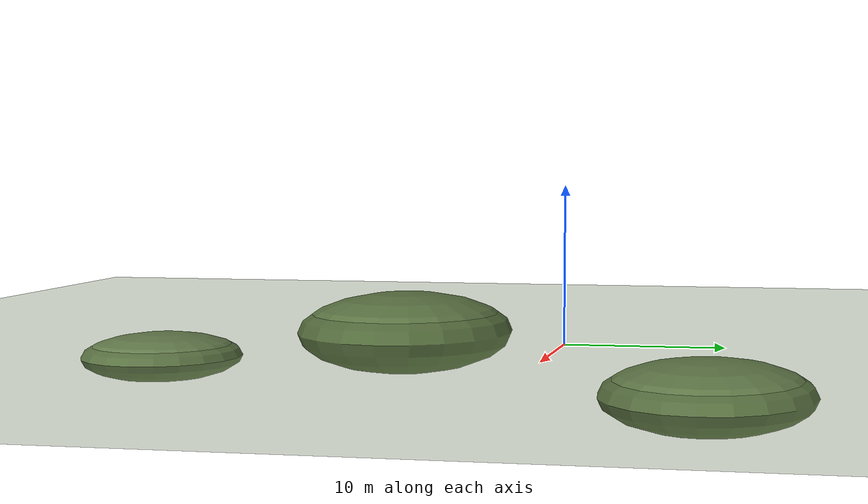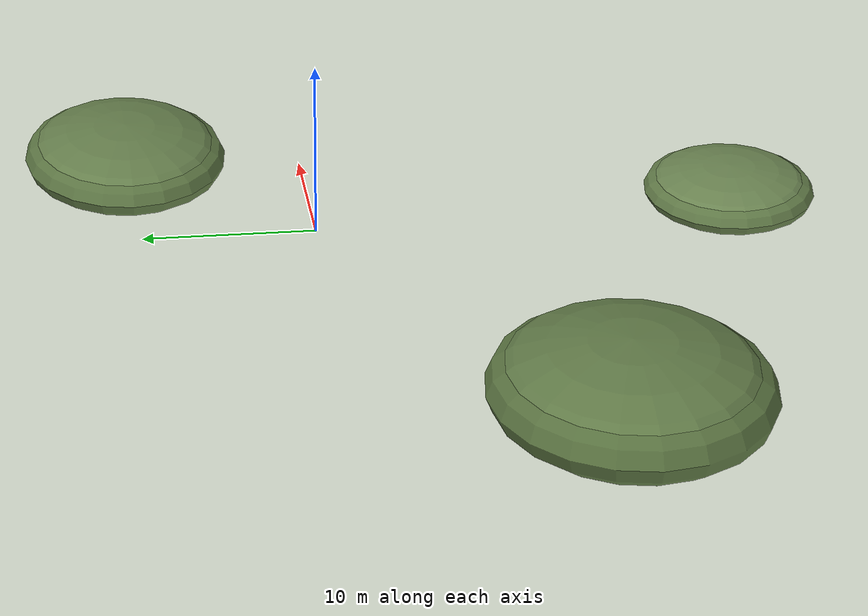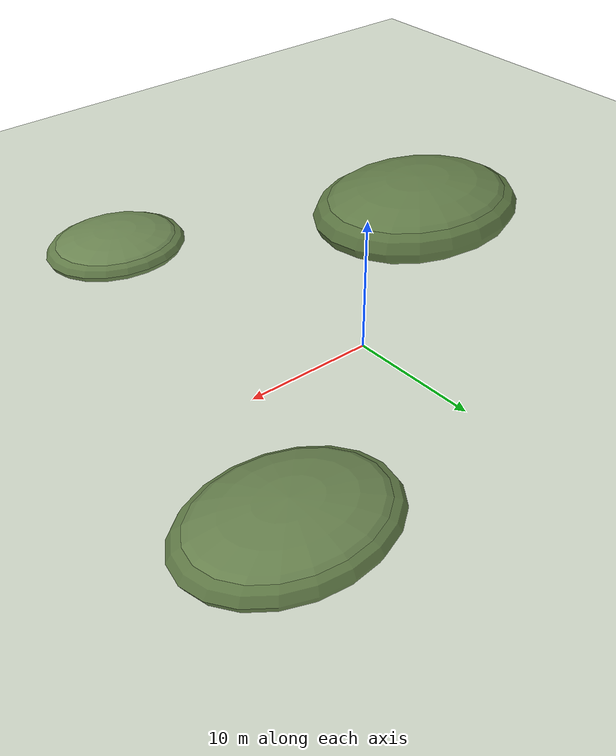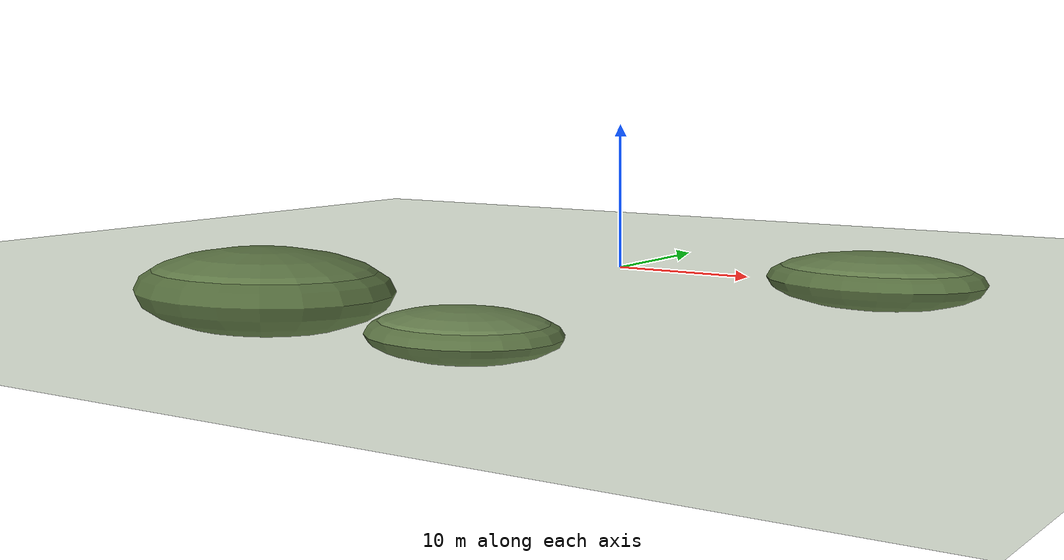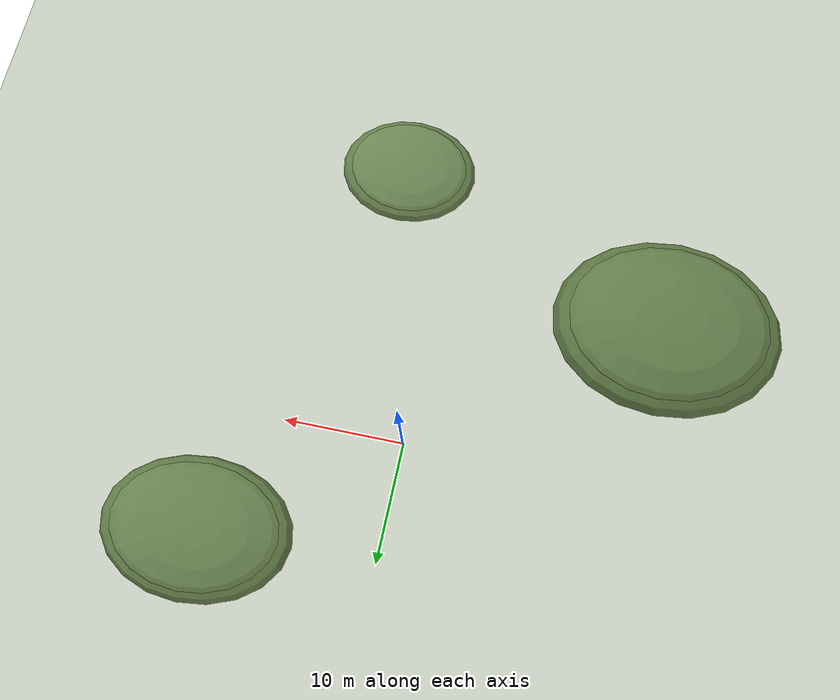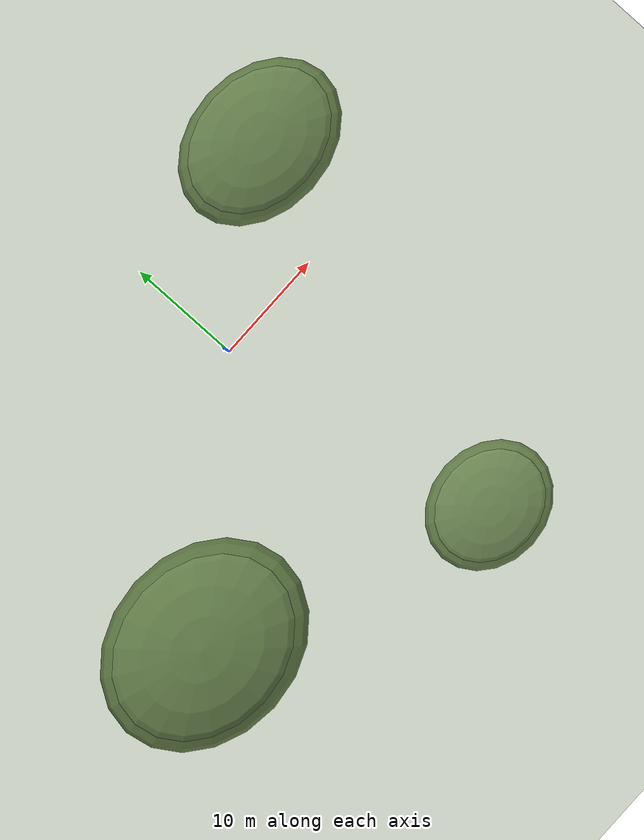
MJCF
<mujoco>
  <!-- Natural terrain environment with ground plane and hills -->
  <worldbody>
    <body name="terrain">
      <!-- Main ground plane -->
      <geom name="ground" type="plane" size="100 100 0.1" rgba="0.35 0.45 0.25 1" friction="1 0.5 0.1"/>

      <!-- Some hills for visual interest -->
      <geom name="hill_1" type="ellipsoid" size="8 6 2" pos="15 10 -1" rgba="0.4 0.5 0.3 1"/>
      <geom name="hill_2" type="ellipsoid" size="10 8 3" pos="-20 -15 -1.5" rgba="0.38 0.48 0.28 1"/>
      <geom name="hill_3" type="ellipsoid" size="6 5 1.5" pos="5 -25 -0.8" rgba="0.42 0.52 0.32 1"/>
    </body>
  </worldbody>
</mujoco>
